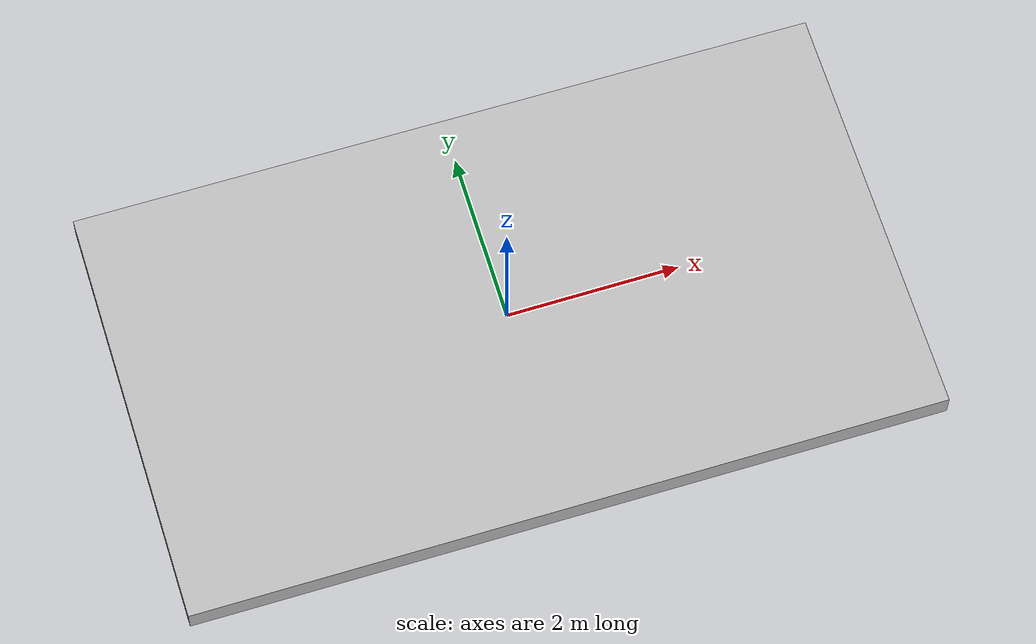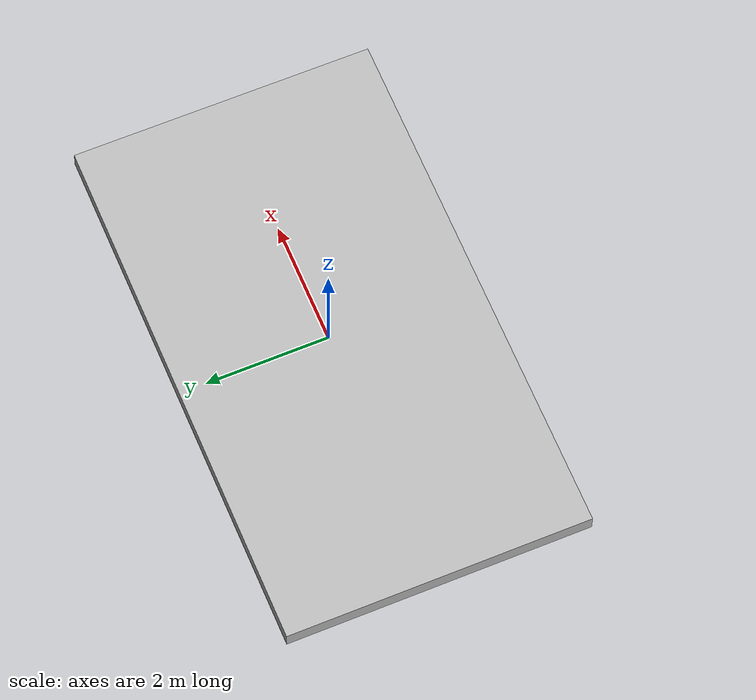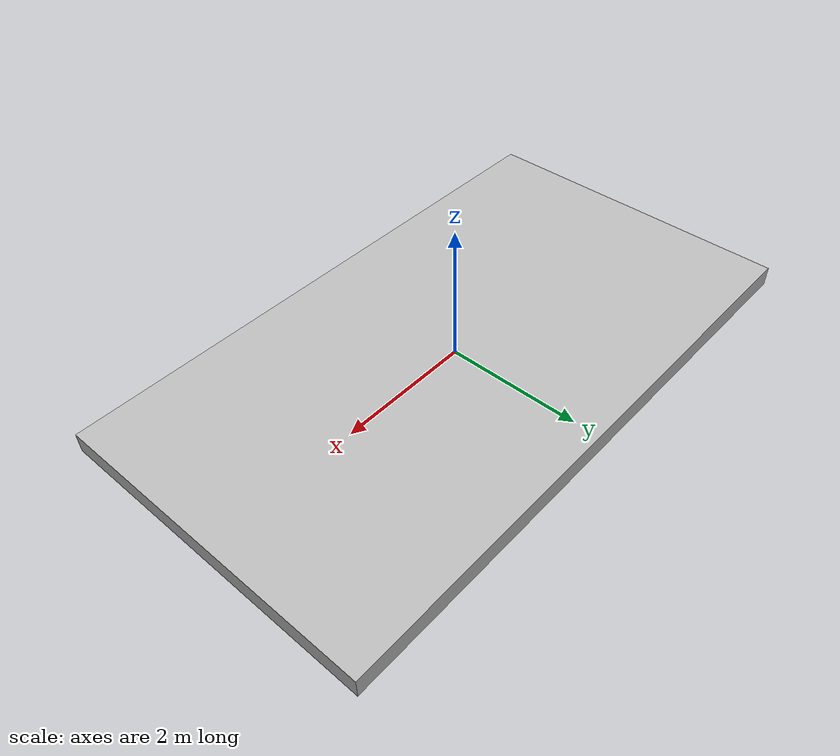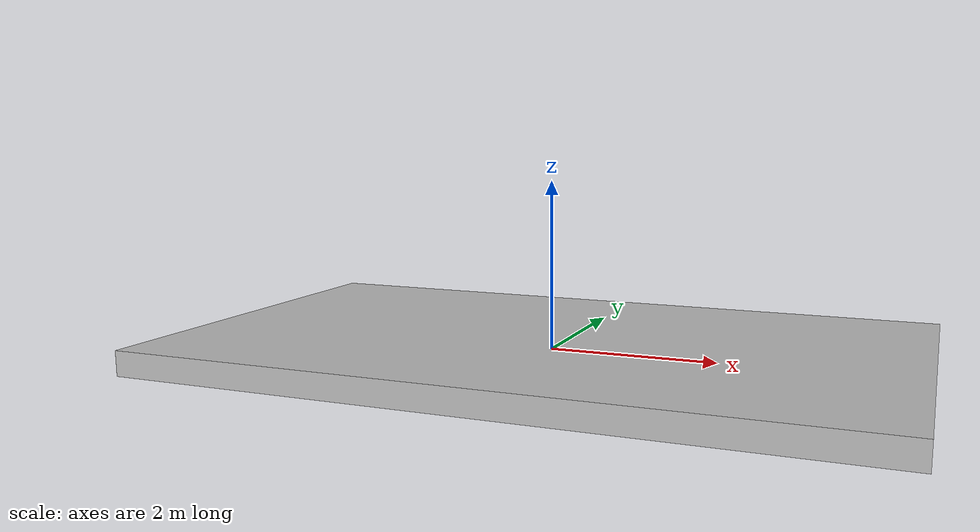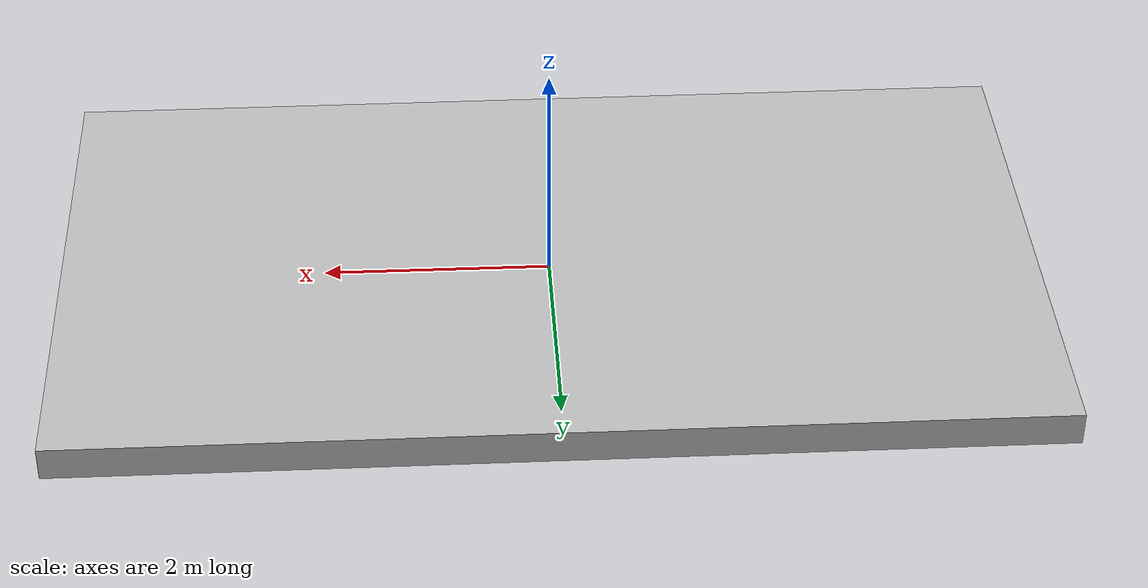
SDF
<?xml version="1.0" ?>
<sdf version="1.4">
  <model name="Fire">
    <static>true</static>
    <link name="link">
      <visual name="visual">
        <geometry>
          <mesh>
            <uri>model://fire/meshes/fire0.dae</uri>
          </mesh>
        </geometry>
      </visual>
    </link>
  </model>
</sdf>
